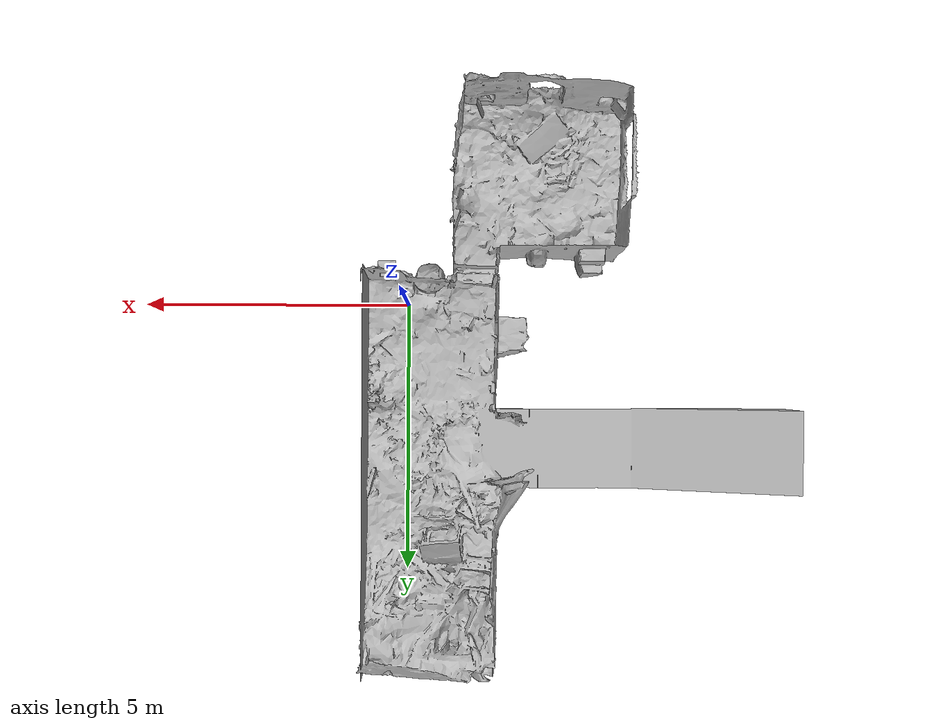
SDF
<?xml version="1.0"?>
<sdf version="1.8">
  <world name="default">
    <plugin filename="gz-sim-sensors-system" name="gz::sim::systems::Sensors">
      <render_engine>ogre2</render_engine>
    </plugin>

    <physics name="1ms" type="dart">
      <max_step_size>0.001</max_step_size>
      <real_time_factor>1</real_time_factor>
      <dart>
        <solver>
          <type>dantzig</type>
        </solver>
      </dart>
    </physics>

    <plugin filename="gz-sim-physics-system" name="gz::sim::systems::Physics" />
    <plugin filename="gz-sim-user-commands-system" name="gz::sim::systems::UserCommands" />
    <plugin filename="gz-sim-scene-broadcaster-system" name="gz::sim::systems::SceneBroadcaster" />
    <plugin filename="gz-sim-contact-system" name="gz::sim::systems::Contact" />

    <!-- Sun -->
    <light name="sun" type="directional">
      <cast_shadows>true</cast_shadows>
      <pose>0 0 10 0 0 0</pose>
      <diffuse>0.8 0.8 0.8 1</diffuse>
      <specular>0.2 0.2 0.2 1</specular>
      <attenuation>
        <range>1000</range>
        <constant>0.9</constant>
        <linear>0.01</linear>
        <quadratic>0.001</quadratic>
      </attenuation>
      <direction>-0.5 0.1 -0.9</direction>
    </light>

    <!-- Custom Blender Terrain -->
    <model name="terrain">
      <static>true</static>
      <pose>0 1 0 1.5708 0 0</pose>
      <link name="link">

        <!-- PHYSICS: Uses the ultra-fast decimated STL -->
        <collision name="collision">
          <geometry>
            <mesh>
              <uri>model://forros_description/meshes/world.obj</uri>
              <scale>1 1 1</scale>
            </mesh>
          </geometry>
          <surface>
            <friction>
              <ode>
                <mu>10</mu>
                <mu2>10</mu2>
              </ode>
            </friction>
          </surface>
        </collision>

        <!-- VISUALS: Uses your high-poly STL for beautiful curves -->
        <visual name="visual">
          <geometry>
            <mesh>
              <uri>model://forros_description/meshes/world.obj</uri>
              <scale>1 1 1</scale>
            </mesh>
          </geometry>

        </visual>
      </link>
    </model>

  </world>
</sdf>
